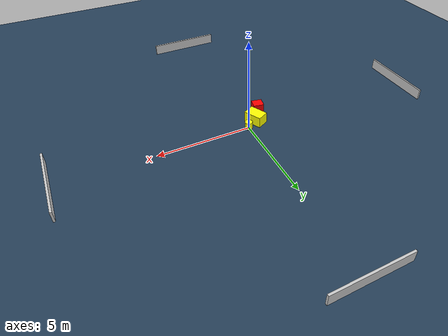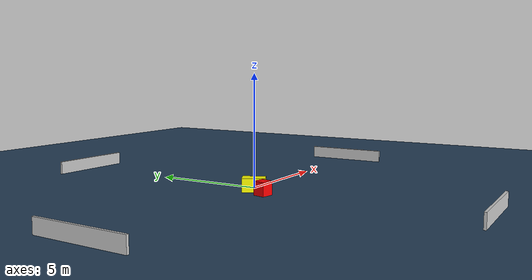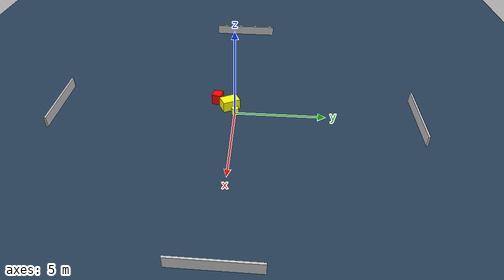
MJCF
<?xml version="1.0" ?>
<mujoco model="generated_environment">
  <option timestep="0.01" integrator="RK4" cone="elliptic"/>
  <default>
    <geom density="1"/>
  </default>
  <asset>
    <texture builtin="gradient" height="3072" name="skybox" rgb1="0.3 0.5 0.7" rgb2="0 0 0" type="skybox" width="512"/>
    <texture builtin="checker" height="300" name="groundplane" rgb1="0.2 0.3 0.4" rgb2="0.1 0.2 0.3" type="2d" width="300"/>
    <material name="groundplane" reflectance="0.2" texrepeat="5 5" texture="groundplane"/>
  </asset>
  <worldbody>
    <light dir="0 0 -1" directional="true" pos="0 0 1.5"/>
    <geom condim="3" friction="0.5 0.005 0.001" material="groundplane" name="floor" pos="0 0 0" size="0 0 0.05" type="plane"/>
    <body name="walls">
      <geom name="wall_1" condim="4" pos="-10.0 0.0 0.3" rgba="0.800000011920929 0.800000011920929 0.800000011920929 1.0" size="0.05 2.0 0.3" type="box"/>
      <geom name="wall_2" condim="4" pos="10.0 0.0 0.3" rgba="0.800000011920929 0.800000011920929 0.800000011920929 1.0" size="0.05 2.0 0.3" type="box"/>
      <geom name="wall_3" condim="4" pos="0.0 -10.0 0.3" rgba="0.800000011920929 0.800000011920929 0.800000011920929 1.0" size="2.0 0.05 0.3" type="box"/>
      <geom name="wall_4" condim="4" pos="0.0 10.0 0.3" rgba="0.800000011920929 0.800000011920929 0.800000011920929 1.0" size="2.0 0.05 0.3" type="box"/>
    </body>
    <body name="robot">
      <joint name="joint_x" type="slide" pos="0 0 0" axis="1 0 0"/>
      <joint name="joint_y" type="slide" pos="0 0 0" axis="0 1 0"/>
      <geom name="robot" type="cylinder" pos="0.0 0.0 0.2" size="0.2 0.2 0.0" mass="5.0" friction="1.0 0.005 0.0001" condim="4" rgba="1.0 1.0 0.0 1.0"/>
    </body>
    <body name="obstacle_1_movable">
      <geom name="obstacle_1_movable" condim="4" pos="-0.5869655432554675 -0.3346345561152062 0.3" euler="0 0 296.87136710339365" friction="0.0 0.005 0.001" rgba="1.0 1.0 0.0 1.0" size="0.49745017018715426 0.3220934129193521 0.3" type="box" mass="0.1"/>
      <joint type="free"/>
    </body>
    <body name="obstacle_2_static">
      <geom name="obstacle_2_static" condim="4" pos="-1.0860506191472148 -1.0836740817144568 0.3" euler="0 0 258.8385773018826" friction="0.0 0.005 0.001" rgba="1.0 0.0 0.0 1.0" size="0.26271480699504285 0.2818281737653001 0.3" type="box"/>
    </body>
  </worldbody>
  <actuator>
    <motor name="actuator_x" joint="joint_x" gear="1" ctrlrange="-1 1"/>
    <motor name="actuator_y" joint="joint_y" gear="1" ctrlrange="-1 1"/>
  </actuator>
</mujoco>
